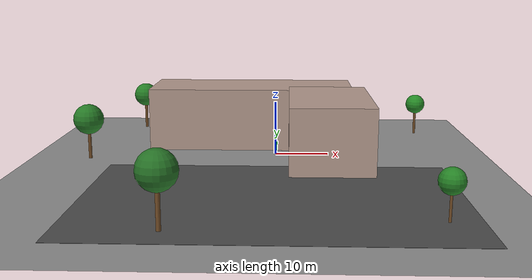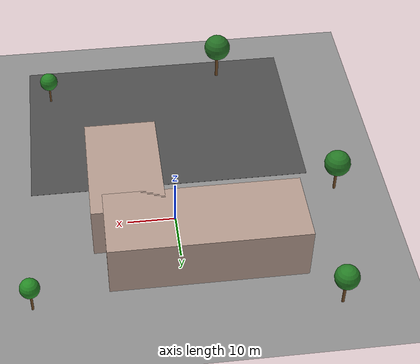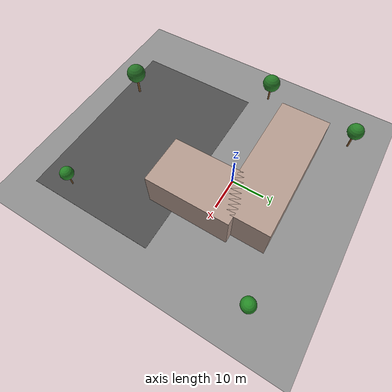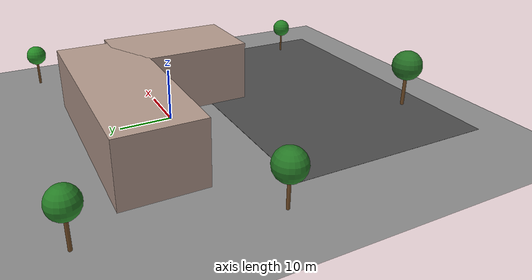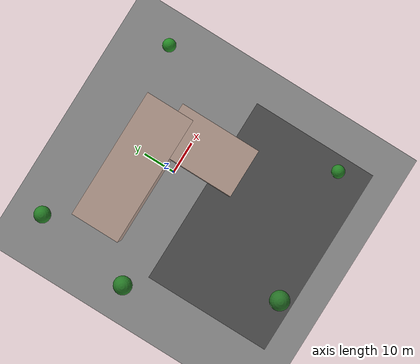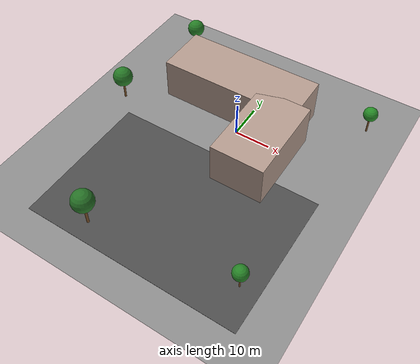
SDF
<?xml version="1.0" ?>
<sdf version="1.6">
  <world name="building_complex_01">

    <!-- Physics Engine Configuration                                      -->
    <physics type="ode">
      <real_time_update_rate>1000</real_time_update_rate>
      <max_step_size>0.001</max_step_size>
      <real_time_factor>1</real_time_factor>
      <ode>
        <solver>
          <type>quick</type>
          <iters>50</iters>
          <sor>1.3</sor>
        </solver>
        <constraints>
          <cfm>0</cfm>
          <erp>0.2</erp>
          <contact_max_correcting_vel>100</contact_max_correcting_vel>
          <contact_surface_layer>0.001</contact_surface_layer>
        </constraints>
      </ode>
    </physics>

    <!-- Scene and Lighting                                                -->
    <scene>
      <ambient>0.5 0.5 0.5 1</ambient>
      <background>0.7 0.8 0.95 1</background>
      <shadows>true</shadows>
    </scene>

    <!-- Sun light source -->
    <light type="directional" name="sun">
      <cast_shadows>true</cast_shadows>
      <pose>0 0 100 0 0 0</pose>
      <diffuse>0.9 0.9 0.85 1</diffuse>
      <specular>0.3 0.3 0.3 1</specular>
      <direction>-0.4 0.2 -0.9</direction>
      <attenuation>
        <range>1000</range>
        <constant>0.9</constant>
        <linear>0.01</linear>
        <quadratic>0.001</quadratic>
      </attenuation>
    </light>

    <!-- Ground Plane                                                      -->
    <model name="ground_plane">
      <static>true</static>
      <link name="ground_plane_link">
        <collision name="ground_plane_collision">
          <geometry>
            <plane>
              <normal>0 0 1</normal>
              <size>200 200</size>
            </plane>
          </geometry>
          <surface>
            <friction>
              <ode>
                <mu>100</mu>
                <mu2>50</mu2>
              </ode>
            </friction>
          </surface>
        </collision>
        <visual name="ground_plane_visual">
          <geometry>
            <plane>
              <normal>0 0 1</normal>
              <size>200 200</size>
            </plane>
          </geometry>
          <material>
            <ambient>0.4 0.4 0.4 1</ambient>
            <diffuse>0.55 0.55 0.55 1</diffuse>
            <specular>0.1 0.1 0.1 1</specular>
          </material>
        </visual>
      </link>
    </model>

    <!-- L-Shaped Building — Main Wing (east-west oriented)                -->
    <!-- 40m long x 15m deep x 12m tall, centered at (-5, 10, 6).        -->
    <!-- This forms the top bar of the L shape.                            -->
    <model name="building_main_wing">
      <static>true</static>
      <pose>-5 10 6 0 0 0</pose>
      <link name="building_main_wing_link">
        <collision name="building_main_wing_collision">
          <geometry>
            <box>
              <size>40 15 12</size>
            </box>
          </geometry>
        </collision>
        <visual name="building_main_wing_visual">
          <geometry>
            <box>
              <size>40 15 12</size>
            </box>
          </geometry>
          <material>
            <ambient>0.55 0.45 0.4 1</ambient>
            <diffuse>0.7 0.6 0.55 1</diffuse>
            <specular>0.2 0.2 0.2 1</specular>
          </material>
        </visual>
      </link>
    </model>

    <!-- L-Shaped Building — Side Wing (north-south oriented)              -->
    <!-- 15m wide x 25m long x 12m tall, centered at (10, -5, 6).        -->
    <!-- This forms the vertical stroke of the L, joining the main wing   -->
    <!-- at the east end.                                                  -->
    <model name="building_side_wing">
      <static>true</static>
      <pose>10 -5 6 0 0 0</pose>
      <link name="building_side_wing_link">
        <collision name="building_side_wing_collision">
          <geometry>
            <box>
              <size>15 25 12</size>
            </box>
          </geometry>
        </collision>
        <visual name="building_side_wing_visual">
          <geometry>
            <box>
              <size>15 25 12</size>
            </box>
          </geometry>
          <material>
            <ambient>0.55 0.45 0.4 1</ambient>
            <diffuse>0.7 0.6 0.55 1</diffuse>
            <specular>0.2 0.2 0.2 1</specular>
          </material>
        </visual>
      </link>
    </model>

    <!-- Parking Area — Flat surface south and east of building            -->
    <!-- A slightly raised, darker surface representing asphalt.           -->
    <!-- 60m x 40m, positioned to the south of the building complex.       -->
    <model name="parking_area">
      <static>true</static>
      <pose>0 -30 0.02 0 0 0</pose>
      <link name="parking_area_link">
        <collision name="parking_area_collision">
          <geometry>
            <box>
              <size>60 40 0.04</size>
            </box>
          </geometry>
        </collision>
        <visual name="parking_area_visual">
          <geometry>
            <box>
              <size>60 40 0.04</size>
            </box>
          </geometry>
          <material>
            <ambient>0.2 0.2 0.2 1</ambient>
            <diffuse>0.3 0.3 0.3 1</diffuse>
            <specular>0.05 0.05 0.05 1</specular>
          </material>
        </visual>
      </link>
    </model>

    <!-- Trees — Simple cylinder trunk + sphere canopy models              -->
    <!-- Scattered around the building perimeter for visual reference      -->
    <!-- and to provide obstacles at drone operating height.               -->

    <!-- Tree 01 — Northwest of building -->
    <model name="tree_01">
      <static>true</static>
      <pose>-30 25 0 0 0 0</pose>
      <link name="tree_01_link">
        <!-- Trunk -->
        <visual name="tree_01_trunk_visual">
          <pose>0 0 3 0 0 0</pose>
          <geometry>
            <cylinder>
              <radius>0.3</radius>
              <length>6</length>
            </cylinder>
          </geometry>
          <material>
            <ambient>0.35 0.2 0.1 1</ambient>
            <diffuse>0.45 0.3 0.15 1</diffuse>
          </material>
        </visual>
        <!-- Canopy -->
        <visual name="tree_01_canopy_visual">
          <pose>0 0 7.5 0 0 0</pose>
          <geometry>
            <sphere>
              <radius>2.5</radius>
            </sphere>
          </geometry>
          <material>
            <ambient>0.1 0.35 0.1 1</ambient>
            <diffuse>0.15 0.5 0.15 1</diffuse>
          </material>
        </visual>
        <collision name="tree_01_trunk_collision">
          <pose>0 0 3 0 0 0</pose>
          <geometry>
            <cylinder>
              <radius>0.3</radius>
              <length>6</length>
            </cylinder>
          </geometry>
        </collision>
        <collision name="tree_01_canopy_collision">
          <pose>0 0 7.5 0 0 0</pose>
          <geometry>
            <sphere>
              <radius>2.5</radius>
            </sphere>
          </geometry>
        </collision>
      </link>
    </model>

    <!-- Tree 02 — Northeast of building -->
    <model name="tree_02">
      <static>true</static>
      <pose>30 20 0 0 0 0</pose>
      <link name="tree_02_link">
        <visual name="tree_02_trunk_visual">
          <pose>0 0 2.5 0 0 0</pose>
          <geometry>
            <cylinder>
              <radius>0.25</radius>
              <length>5</length>
            </cylinder>
          </geometry>
          <material>
            <ambient>0.35 0.2 0.1 1</ambient>
            <diffuse>0.45 0.3 0.15 1</diffuse>
          </material>
        </visual>
        <visual name="tree_02_canopy_visual">
          <pose>0 0 6.5 0 0 0</pose>
          <geometry>
            <sphere>
              <radius>2.0</radius>
            </sphere>
          </geometry>
          <material>
            <ambient>0.1 0.4 0.1 1</ambient>
            <diffuse>0.15 0.55 0.15 1</diffuse>
          </material>
        </visual>
        <collision name="tree_02_trunk_collision">
          <pose>0 0 2.5 0 0 0</pose>
          <geometry>
            <cylinder>
              <radius>0.25</radius>
              <length>5</length>
            </cylinder>
          </geometry>
        </collision>
        <collision name="tree_02_canopy_collision">
          <pose>0 0 6.5 0 0 0</pose>
          <geometry>
            <sphere>
              <radius>2.0</radius>
            </sphere>
          </geometry>
        </collision>
      </link>
    </model>

    <!-- Tree 03 — South side of parking area -->
    <model name="tree_03">
      <static>true</static>
      <pose>-15 -45 0 0 0 0</pose>
      <link name="tree_03_link">
        <visual name="tree_03_trunk_visual">
          <pose>0 0 3.5 0 0 0</pose>
          <geometry>
            <cylinder>
              <radius>0.35</radius>
              <length>7</length>
            </cylinder>
          </geometry>
          <material>
            <ambient>0.35 0.2 0.1 1</ambient>
            <diffuse>0.45 0.3 0.15 1</diffuse>
          </material>
        </visual>
        <visual name="tree_03_canopy_visual">
          <pose>0 0 8.5 0 0 0</pose>
          <geometry>
            <sphere>
              <radius>3.0</radius>
            </sphere>
          </geometry>
          <material>
            <ambient>0.1 0.3 0.1 1</ambient>
            <diffuse>0.15 0.45 0.15 1</diffuse>
          </material>
        </visual>
        <collision name="tree_03_trunk_collision">
          <pose>0 0 3.5 0 0 0</pose>
          <geometry>
            <cylinder>
              <radius>0.35</radius>
              <length>7</length>
            </cylinder>
          </geometry>
        </collision>
        <collision name="tree_03_canopy_collision">
          <pose>0 0 8.5 0 0 0</pose>
          <geometry>
            <sphere>
              <radius>3.0</radius>
            </sphere>
          </geometry>
        </collision>
      </link>
    </model>

    <!-- Tree 04 — East of parking area -->
    <model name="tree_04">
      <static>true</static>
      <pose>25 -40 0 0 0 0</pose>
      <link name="tree_04_link">
        <visual name="tree_04_trunk_visual">
          <pose>0 0 2.5 0 0 0</pose>
          <geometry>
            <cylinder>
              <radius>0.2</radius>
              <length>5</length>
            </cylinder>
          </geometry>
          <material>
            <ambient>0.35 0.2 0.1 1</ambient>
            <diffuse>0.45 0.3 0.15 1</diffuse>
          </material>
        </visual>
        <visual name="tree_04_canopy_visual">
          <pose>0 0 6 0 0 0</pose>
          <geometry>
            <sphere>
              <radius>2.0</radius>
            </sphere>
          </geometry>
          <material>
            <ambient>0.1 0.38 0.1 1</ambient>
            <diffuse>0.15 0.52 0.15 1</diffuse>
          </material>
        </visual>
        <collision name="tree_04_trunk_collision">
          <pose>0 0 2.5 0 0 0</pose>
          <geometry>
            <cylinder>
              <radius>0.2</radius>
              <length>5</length>
            </cylinder>
          </geometry>
        </collision>
        <collision name="tree_04_canopy_collision">
          <pose>0 0 6 0 0 0</pose>
          <geometry>
            <sphere>
              <radius>2.0</radius>
            </sphere>
          </geometry>
        </collision>
      </link>
    </model>

    <!-- Tree 05 — West of building -->
    <model name="tree_05">
      <static>true</static>
      <pose>-35 -5 0 0 0 0</pose>
      <link name="tree_05_link">
        <visual name="tree_05_trunk_visual">
          <pose>0 0 3 0 0 0</pose>
          <geometry>
            <cylinder>
              <radius>0.3</radius>
              <length>6</length>
            </cylinder>
          </geometry>
          <material>
            <ambient>0.35 0.2 0.1 1</ambient>
            <diffuse>0.45 0.3 0.15 1</diffuse>
          </material>
        </visual>
        <visual name="tree_05_canopy_visual">
          <pose>0 0 7.5 0 0 0</pose>
          <geometry>
            <sphere>
              <radius>2.8</radius>
            </sphere>
          </geometry>
          <material>
            <ambient>0.1 0.35 0.1 1</ambient>
            <diffuse>0.15 0.48 0.15 1</diffuse>
          </material>
        </visual>
        <collision name="tree_05_trunk_collision">
          <pose>0 0 3 0 0 0</pose>
          <geometry>
            <cylinder>
              <radius>0.3</radius>
              <length>6</length>
            </cylinder>
          </geometry>
        </collision>
        <collision name="tree_05_canopy_collision">
          <pose>0 0 7.5 0 0 0</pose>
          <geometry>
            <sphere>
              <radius>2.8</radius>
            </sphere>
          </geometry>
        </collision>
      </link>
    </model>

  </world>
</sdf>
